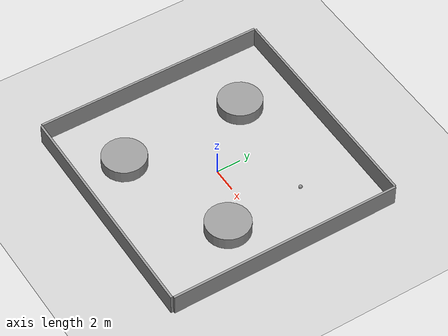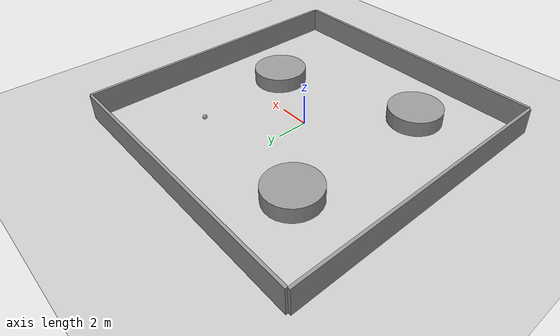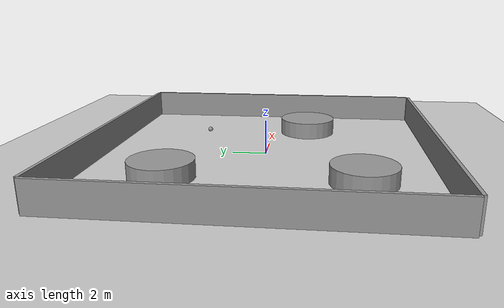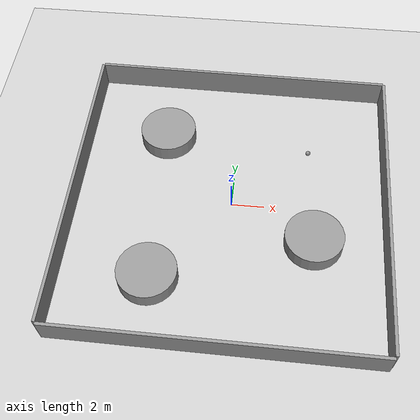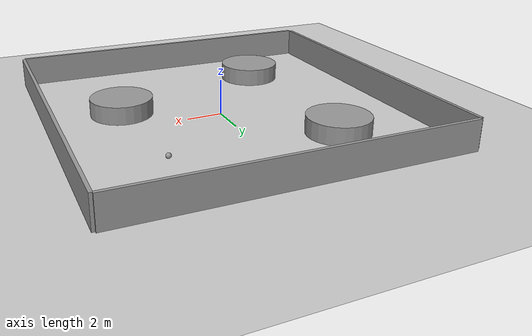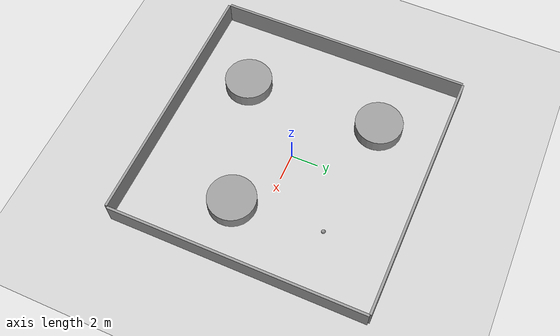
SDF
<sdf version="1.6">
 <world name="default">
  <light name="sun" type="directional">
   <pose>0 0 10 0 -0 0</pose>
   <diffuse>0.8 0.8 0.8 1</diffuse>
   <specular>0.2 0.2 0.2 1</specular>
   <attenuation>
    <range>1000</range>
    <constant>0.9</constant>
    <linear>0.01</linear>
    <quadratic>0.001</quadratic>
   </attenuation>
   <direction>-0.5 0.1 -0.9</direction>
  </light>
  <model name="ground_plane">
   <static>1</static>
   <link name="link">
    <collision name="collision">
     <geometry><plane><normal>0 0 1</normal><size>100 100</size></plane></geometry>
     <surface>
      <contact><collide_bitmask>65535</collide_bitmask></contact>
      <friction><ode><mu>100</mu><mu2>50</mu2></ode></friction>
     </surface>
    </collision>
    <visual name="visual">
     <cast_shadows>0</cast_shadows>
     <geometry><plane><normal>0 0 1</normal><size>100 100</size></plane></geometry>
     <material>
      <script><uri>file://media/materials/scripts/gazebo.material</uri><name>Gazebo/Grey</name></script>
     </material>
    </visual>
   </link>
  </model>
  <gravity>0 0 -9.8</gravity>
  <magnetic_field>6e-06 2.3e-05 -4.2e-05</magnetic_field>
  <atmosphere type="adiabatic"/>
  <physics name="default_physics" default="0" type="ode">
   <max_step_size>0.001</max_step_size>
   <real_time_factor>1</real_time_factor>
   <real_time_update_rate>1000</real_time_update_rate>
  </physics>
  <scene><ambient>0.4 0.4 0.4 1</ambient><background>0.7 0.7 0.7 1</background><shadows>1</shadows></scene>
  <audio><device>default</device></audio>
  <spherical_coordinates>
   <surface_model>EARTH_WGS84</surface_model>
   <latitude_deg>0</latitude_deg>
   <longitude_deg>0</longitude_deg>
   <elevation>0</elevation>
   <heading_deg>0</heading_deg>
  </spherical_coordinates>
  <model name="Confined_Area_20x20">
   <link name="link_1">
    <inertial>
     <mass>44564.1</mass>
     <inertia>
      <ixx>1.32603e+06</ixx>
      <ixy>0</ixy>
      <ixz>0</ixz>
      <iyy>11089.5</iyy>
      <iyz>0</iyz>
      <izz>1.31519e+06</izz>
     </inertia>
    </inertial>
    <pose>-6.97407 -1.86948 0 0 -0 0</pose>
    <visual name="visual">
     <geometry><box><size>0.181322 18.8179 1.7185</size></box></geometry>
     <material>
      <lighting>1</lighting>
      <script><uri>file://media/materials/scripts/gazebo.material</uri><name>Gazebo/Grey</name></script>
      <shader type="vertex"><normal_map>__default__</normal_map></shader>
     </material>
    </visual>
    <collision name="collision">
     <geometry><box><size>0.181322 18.8179 1.7185</size></box></geometry>
     <surface>
      <friction>
       <ode><mu>1</mu><mu2>1</mu2><fdir1>0 0 0</fdir1><slip1>0</slip1><slip2>0</slip2></ode>
       <torsional>
        <coefficient>1</coefficient>
        <patch_radius>0</patch_radius>
        <surface_radius>0</surface_radius>
        <use_patch_radius>1</use_patch_radius>
        <ode><slip>0</slip></ode>
       </torsional>
      </friction>
      <bounce><restitution_coefficient>0</restitution_coefficient><threshold>1e+06</threshold></bounce>
      <contact>
       <collide_without_contact>0</collide_without_contact>
       <collide_without_contact_bitmask>1</collide_without_contact_bitmask>
       <collide_bitmask>1</collide_bitmask>
       <ode>
        <soft_cfm>0</soft_cfm>
        <soft_erp>0.2</soft_erp>
        <kp>1e+13</kp>
        <kd>1</kd>
        <max_vel>0.01</max_vel>
        <min_depth>0</min_depth>
       </ode>
       <bullet>
        <split_impulse>1</split_impulse>
        <split_impulse_penetration_threshold>-0.01</split_impulse_penetration_threshold>
        <soft_cfm>0</soft_cfm>
        <soft_erp>0.2</soft_erp>
        <kp>1e+13</kp>
        <kd>1</kd>
       </bullet>
      </contact>
     </surface>
    </collision>
   </link>
   <link name="link_1_clone">
    <inertial>
     <mass>44564.1</mass>
     <inertia>
      <ixx>1.32603e+06</ixx>
      <ixy>0</ixy>
      <ixz>0</ixz>
      <iyy>11089.5</iyy>
      <iyz>0</iyz>
      <izz>1.31519e+06</izz>
     </inertia>
    </inertial>
    <pose>11.9888 -2.03085 0.000703 0 -5.9e-05 0</pose>
    <visual name="visual">
     <geometry><box><size>0.181322 18.8179 1.7185</size></box></geometry>
     <material>
      <lighting>1</lighting>
      <script><uri>file://media/materials/scripts/gazebo.material</uri><name>Gazebo/Grey</name></script>
      <shader type="vertex"><normal_map>__default__</normal_map></shader>
     </material>
    </visual>
    <collision name="collision">
     <geometry><box><size>0.181322 18.8179 1.7185</size></box></geometry>
     <surface>
      <friction>
       <ode><mu>1</mu><mu2>1</mu2><fdir1>0 0 0</fdir1><slip1>0</slip1><slip2>0</slip2></ode>
       <torsional>
        <coefficient>1</coefficient>
        <patch_radius>0</patch_radius>
        <surface_radius>0</surface_radius>
        <use_patch_radius>1</use_patch_radius>
        <ode><slip>0</slip></ode>
       </torsional>
      </friction>
      <bounce><restitution_coefficient>0</restitution_coefficient><threshold>1e+06</threshold></bounce>
      <contact>
       <collide_without_contact>0</collide_without_contact>
       <collide_without_contact_bitmask>1</collide_without_contact_bitmask>
       <collide_bitmask>1</collide_bitmask>
       <ode>
        <soft_cfm>0</soft_cfm>
        <soft_erp>0.2</soft_erp>
        <kp>1e+13</kp>
        <kd>1</kd>
        <max_vel>0.01</max_vel>
        <min_depth>0</min_depth>
       </ode>
       <bullet>
        <split_impulse>1</split_impulse>
        <split_impulse_penetration_threshold>-0.01</split_impulse_penetration_threshold>
        <soft_cfm>0</soft_cfm>
        <soft_erp>0.2</soft_erp>
        <kp>1e+13</kp>
        <kd>1</kd>
       </bullet>
      </contact>
     </surface>
    </collision>
   </link>
   <link name="link_1_clone_0">
    <inertial>
     <mass>44564.1</mass>
     <inertia>
      <ixx>1.32603e+06</ixx>
      <ixy>0</ixy>
      <ixz>0</ixz>
      <iyy>11089.5</iyy>
      <iyz>0</iyz>
      <izz>1.31519e+06</izz>
     </inertia>
    </inertial>
    <pose>2.5112 7.48856 0.000147 -5.9e-05 -1e-06 1.56029</pose>
    <visual name="visual">
     <geometry><box><size>0.181322 18.8179 1.7185</size></box></geometry>
     <material>
      <lighting>1</lighting>
      <script><uri>file://media/materials/scripts/gazebo.material</uri><name>Gazebo/Grey</name></script>
      <shader type="vertex"><normal_map>__default__</normal_map></shader>
     </material>
    </visual>
    <collision name="collision">
     <geometry><box><size>0.181322 18.8179 1.7185</size></box></geometry>
     <surface>
      <friction>
       <ode><mu>1</mu><mu2>1</mu2><fdir1>0 0 0</fdir1><slip1>0</slip1><slip2>0</slip2></ode>
       <torsional>
        <coefficient>1</coefficient>
        <patch_radius>0</patch_radius>
        <surface_radius>0</surface_radius>
        <use_patch_radius>1</use_patch_radius>
        <ode><slip>0</slip></ode>
       </torsional>
      </friction>
      <bounce><restitution_coefficient>0</restitution_coefficient><threshold>1e+06</threshold></bounce>
      <contact>
       <collide_without_contact>0</collide_without_contact>
       <collide_without_contact_bitmask>1</collide_without_contact_bitmask>
       <collide_bitmask>1</collide_bitmask>
       <ode>
        <soft_cfm>0</soft_cfm>
        <soft_erp>0.2</soft_erp>
        <kp>1e+13</kp>
        <kd>1</kd>
        <max_vel>0.01</max_vel>
        <min_depth>0</min_depth>
       </ode>
       <bullet>
        <split_impulse>1</split_impulse>
        <split_impulse_penetration_threshold>-0.01</split_impulse_penetration_threshold>
        <soft_cfm>0</soft_cfm>
        <soft_erp>0.2</soft_erp>
        <kp>1e+13</kp>
        <kd>1</kd>
       </bullet>
      </contact>
     </surface>
    </collision>
   </link>
   <link name="link_1_clone_0_clone">
    <inertial>
     <mass>44564.1</mass>
     <inertia>
      <ixx>1.32603e+06</ixx>
      <ixy>0</ixy>
      <ixz>0</ixz>
      <iyy>11089.5</iyy>
      <iyz>0</iyz>
      <izz>1.31519e+06</izz>
     </inertia>
    </inertial>
    <pose>2.51624 -11.4629 0.000295 -0.000118 -2e-06 1.56029</pose>
    <visual name="visual">
     <geometry><box><size>0.181322 18.8179 1.7185</size></box></geometry>
     <material>
      <lighting>1</lighting>
      <script><uri>file://media/materials/scripts/gazebo.material</uri><name>Gazebo/Grey</name></script>
      <shader type="vertex"><normal_map>__default__</normal_map></shader>
     </material>
    </visual>
    <collision name="collision">
     <geometry><box><size>0.181322 18.8179 1.7185</size></box></geometry>
     <surface>
      <friction>
       <ode><mu>1</mu><mu2>1</mu2><fdir1>0 0 0</fdir1><slip1>0</slip1><slip2>0</slip2></ode>
       <torsional>
        <coefficient>1</coefficient>
        <patch_radius>0</patch_radius>
        <surface_radius>0</surface_radius>
        <use_patch_radius>1</use_patch_radius>
        <ode><slip>0</slip></ode>
       </torsional>
      </friction>
      <bounce><restitution_coefficient>0</restitution_coefficient><threshold>1e+06</threshold></bounce>
      <contact>
       <collide_without_contact>0</collide_without_contact>
       <collide_without_contact_bitmask>1</collide_without_contact_bitmask>
       <collide_bitmask>1</collide_bitmask>
       <ode>
        <soft_cfm>0</soft_cfm>
        <soft_erp>0.2</soft_erp>
        <kp>1e+13</kp>
        <kd>1</kd>
        <max_vel>0.01</max_vel>
        <min_depth>0</min_depth>
       </ode>
       <bullet>
        <split_impulse>1</split_impulse>
        <split_impulse_penetration_threshold>-0.01</split_impulse_penetration_threshold>
        <soft_cfm>0</soft_cfm>
        <soft_erp>0.2</soft_erp>
        <kp>1e+13</kp>
        <kd>1</kd>
       </bullet>
      </contact>
     </surface>
    </collision>
   </link>
   <static>0</static>
   <pose>-2.64369 1.96061 0.85925 0 -0 0</pose>
  </model>
  <model name="unit_cylinder">
   <pose>-4.3308 -5.37913 0.499986 -8e-06 6e-06 -0.140492</pose>
   <link name="link">
    <inertial>
     <mass>1</mass>
     <inertia><ixx>0.145833</ixx><ixy>0</ixy><ixz>0</ixz><iyy>0.145833</iyy><iyz>0</iyz><izz>0.125</izz></inertia>
    </inertial>
    <collision name="collision">
     <geometry><cylinder><radius>1.76002</radius><length>1</length></cylinder></geometry>
    </collision>
    <visual name="visual">
     <geometry><cylinder><radius>1.76002</radius><length>1</length></cylinder></geometry>
     <material>
      <script><name>Gazebo/Grey</name><uri>file://media/materials/scripts/gazebo.material</uri></script>
     </material>
    </visual>
   </link>
  </model>
  <model name="unit_cylinder_clone">
   <pose>5.07741 -2.2979 0.499986 -8e-06 6e-06 -0.140491</pose>
   <link name="link">
    <inertial>
     <mass>1</mass>
     <inertia><ixx>0.145833</ixx><ixy>0</ixy><ixz>0</ixz><iyy>0.145833</iyy><iyz>0</iyz><izz>0.125</izz></inertia>
    </inertial>
    <collision name="collision">
     <geometry><cylinder><radius>1.76002</radius><length>1</length></cylinder></geometry>
    </collision>
    <visual name="visual">
     <geometry><cylinder><radius>1.76002</radius><length>1</length></cylinder></geometry>
     <material>
      <script><name>Gazebo/Grey</name><uri>file://media/materials/scripts/gazebo.material</uri></script>
     </material>
    </visual>
   </link>
  </model>
  <model name="unit_cylinder_clone_0">
   <pose>-4.54705 4.9237 0.499996 3e-06 -2e-06 -0.140383</pose>
   <link name="link">
    <inertial>
     <mass>1</mass>
     <inertia><ixx>0.145833</ixx><ixy>0</ixy><ixz>0</ixz><iyy>0.145833</iyy><iyz>0</iyz><izz>0.125</izz></inertia>
    </inertial>
    <collision name="collision">
     <geometry><cylinder><radius>1.76002</radius><length>1</length></cylinder></geometry>
    </collision>
    <visual name="visual">
     <geometry><cylinder><radius>1.76002</radius><length>1</length></cylinder></geometry>
     <material>
      <script><name>Gazebo/Grey</name><uri>file://media/materials/scripts/gazebo.material</uri></script>
     </material>
    </visual>
   </link>
  </model>
  <model name="Sphere_radius_15cm">
   <link name="link">
    <inertial>
     <mass>1</mass>
     <inertia><ixx>0.1</ixx><ixy>0</ixy><ixz>0</ixz><iyy>0.1</iyy><iyz>0</iyz><izz>0.1</izz></inertia>
    </inertial>
    <visual name="visual">
     <geometry><sphere><radius>0.15</radius></sphere></geometry>
     <material>
      <script><name>Gazebo/Grey</name><uri>file://media/materials/scripts/gazebo.material</uri></script>
      <shader type="vertex"><normal_map>__default__</normal_map></shader>
      <ambient>0.3 0.3 0.3 1</ambient>
      <diffuse>0.7 0.7 0.7 1</diffuse>
      <specular>0.01 0.01 0.01 1</specular>
      <emissive>0 0 0 1</emissive>
     </material>
    </visual>
    <collision name="collision">
     <geometry><sphere><radius>0.15</radius></sphere></geometry>
     <surface>
      <friction>
       <ode><mu>1</mu><mu2>1</mu2><fdir1>0 0 0</fdir1><slip1>0</slip1><slip2>0</slip2></ode>
       <torsional>
        <coefficient>1</coefficient>
        <patch_radius>0</patch_radius>
        <surface_radius>0</surface_radius>
        <use_patch_radius>1</use_patch_radius>
        <ode><slip>0</slip></ode>
       </torsional>
      </friction>
      <bounce><restitution_coefficient>0</restitution_coefficient><threshold>1e+06</threshold></bounce>
      <contact>
       <collide_without_contact>0</collide_without_contact>
       <collide_without_contact_bitmask>1</collide_without_contact_bitmask>
       <collide_bitmask>1</collide_bitmask>
       <ode>
        <soft_cfm>0</soft_cfm>
        <soft_erp>0.2</soft_erp>
        <kp>1e+13</kp>
        <kd>1</kd>
        <max_vel>0.01</max_vel>
        <min_depth>0</min_depth>
       </ode>
       <bullet>
        <split_impulse>1</split_impulse>
        <split_impulse_penetration_threshold>-0.01</split_impulse_penetration_threshold>
        <soft_cfm>0</soft_cfm>
        <soft_erp>0.2</soft_erp>
        <kp>1e+13</kp>
        <kd>1</kd>
       </bullet>
      </contact>
     </surface>
    </collision>
   </link>
   <static>0</static>
   <pose>4.59568 4.32823 0.15 0 -0 0</pose>
  </model>
 </world>
</sdf>
